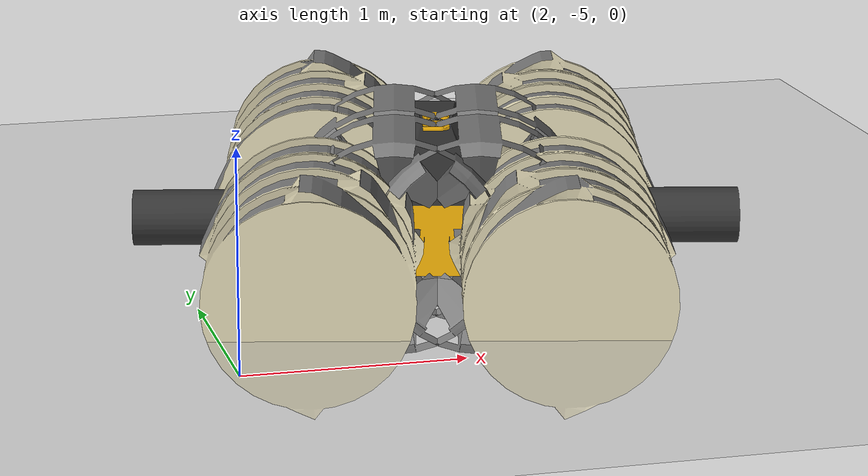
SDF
<sdf version="1.6">
 <world name="base_world">
  <physics name="default_physics" default="0" type="ode">
   <max_step_size>0.001</max_step_size>
   <real_time_factor>1</real_time_factor>
   <real_time_update_rate>1000</real_time_update_rate>
  </physics>
  <light name="sun" type="directional">
   <pose>0 0 10 0 -0 0</pose>
   <diffuse>0.8 0.8 0.8 1</diffuse>
   <specular>0.1 0.1 0.1 1</specular>
   <attenuation>
    <range>1000</range>
    <constant>0.9</constant>
    <linear>0.01</linear>
    <quadratic>0.001</quadratic>
   </attenuation>
   <direction>-0.5 0.5 -1</direction>
  </light>
  <model name="ground_plane">
   <static>1</static>
   <link name="link">
    <collision name="collision">
     <geometry><plane><normal>0 0 1</normal><size>100 100</size></plane></geometry>
     <surface><friction><ode><mu>100</mu><mu2>50</mu2></ode></friction></surface>
    </collision>
    <visual name="visual">
     <cast_shadows>0</cast_shadows>
     <geometry><plane><normal>0 0 1</normal><size>100 100</size></plane></geometry>
     <material>
      <script><uri>file://media/materials/scripts/gazebo.material</uri><name>Gazebo/Grey</name></script>
     </material>
    </visual>
   </link>
  </model>
  <gravity>0 0 -9.81</gravity>
  <magnetic_field>6e-06 2.3e-05 -4.2e-05</magnetic_field>
  <atmosphere type="adiabatic"/>
  <scene><ambient>0.4 0.4 0.4 1</ambient><background>0.7 0.7 0.7 1</background><shadows>1</shadows></scene>
  <spherical_coordinates>
   <surface_model>EARTH_WGS84</surface_model>
   <latitude_deg>0</latitude_deg>
   <longitude_deg>0</longitude_deg>
   <elevation>0</elevation>
   <heading_deg>0</heading_deg>
  </spherical_coordinates>
  <model name="ezrassor">
   <link name="base_link">
    <inertial>
     <pose>0.001974 0 -0.000658 0 -0 0</pose>
     <mass>15.2</mass>
     <inertia>
      <ixx>0.501047</ixx>
      <ixy>0</ixy>
      <ixz>0.00298026</ixz>
      <iyy>1.00999</iyy>
      <iyz>0</iyz>
      <izz>0.108994</izz>
     </inertia>
    </inertial>
    <collision name="base_link_fixed_joint_lump__collision_collision">
     <geometry>
      <mesh>
       <scale>1 1 1</scale>
       <uri>/home/ronald/.workspace/src/ezrassor_sim_description/meshes/base_unit.dae</uri>
      </mesh>
     </geometry>
    </collision>
    <collision name="base_link_fixed_joint_lump__stereo_camera_front_collision_1">
     <pose>0.3 0 -0.1 0 -0 0</pose>
     <geometry><box><size>0.04 0.04 0.04</size></box></geometry>
    </collision>
    <collision name="base_link_fixed_joint_lump__imu_link_collision_2">
     <geometry><box><size>0.04 0.04 0.04</size></box></geometry>
    </collision>
    <visual name="base_link_visual_visual">
     <geometry>
      <mesh>
       <scale>1 1 1</scale>
       <uri>/home/ronald/.workspace/src/ezrassor_sim_description/meshes/base_unit.dae</uri>
      </mesh>
     </geometry>
     <material><script><uri>__default__</uri><name>__default__</name></script></material>
    </visual>
    <visual name="base_link_fixed_joint_lump__stereo_camera_front_visual_1">
     <pose>0.3 0 -0.1 0 -0 0</pose>
     <geometry><box><size>0.04 0.04 0.04</size></box></geometry>
     <material><script><uri>__default__</uri><name>__default__</name></script></material>
    </visual>
    <visual name="base_link_fixed_joint_lump__imu_link_visual_2">
     <geometry><box><size>0.04 0.04 0.04</size></box></geometry>
     <material><script><uri>__default__</uri><name>__default__</name></script></material>
    </visual>
    <sensor name="stereo_camera" type="multicamera">
     <update_rate>60</update_rate>
     <camera name="left">
      <pose>0 0.035 0 0 -0 0</pose>
      <horizontal_fov>1.39626</horizontal_fov>
      <image><width>640</width><height>480</height><format>R8G8B8</format></image>
      <clip><near>0.02</near><far>300</far></clip>
      <noise><type>gaussian</type><mean>0</mean><stddev>0.007</stddev></noise>
     </camera>
     <camera name="right">
      <pose>0 -0.035 0 0 -0 0</pose>
      <horizontal_fov>1.39626</horizontal_fov>
      <image><width>640</width><height>480</height><format>R8G8B8</format></image>
      <clip><near>0.02</near><far>300</far></clip>
      <noise><type>gaussian</type><mean>0</mean><stddev>0.007</stddev></noise>
     </camera>
     <plugin name="stereo_camera_controller" filename="libgazebo_ros_multicamera.so">
      <focalLength>0</focalLength>
      <alwaysOn>true</alwaysOn>
      <updateRate>0.0</updateRate>
      <cameraName>front_camera</cameraName>
      <imageTopicName>image_raw</imageTopicName>
      <cameraInfoTopicName>camera_info</cameraInfoTopicName>
      <frameName>left_camera_optical_frame</frameName>
      <rightFrameName>right_camera_optical_frame</rightFrameName>
      <hackBaseline>0.07</hackBaseline>
      <distortionK1>0.0</distortionK1>
      <distortionK2>0.0</distortionK2>
      <distortionK3>0.0</distortionK3>
      <distortionT1>0.0</distortionT1>
      <distortionT2>0.0</distortionT2>
      <robotNamespace>/</robotNamespace>
     </plugin>
     <pose>0.3 0 -0.1 0 -0 0</pose>
    </sensor>
    <sensor name="imu_sensor" type="imu">
     <always_on>1</always_on>
     <update_rate>100</update_rate>
     <visualize>1</visualize>
     <topic>__default_topic__</topic>
     <plugin name="imu_plugin" filename="libgazebo_ros_imu_sensor.so">
      <topicName>imu</topicName>
      <bodyName>imu_link</bodyName>
      <updateRateHZ>10.0</updateRateHZ>
      <gaussianNoise>0.0</gaussianNoise>
      <xyzOffset>0 0 0</xyzOffset>
      <rpyOffset>0 0 0</rpyOffset>
      <frameName>imu_link</frameName>
      <robotNamespace>/</robotNamespace>
     </plugin>
    </sensor>
   </link>
   <link name="arm_back">
    <pose>-0.2 0 0 0 -0 0</pose>
    <inertial>
     <pose>0 0 0 0 -0 3.1415</pose>
     <mass>5</mass>
     <inertia>
      <ixx>0.040625</ixx>
      <ixy>0</ixy>
      <ixz>0</ixz>
      <iyy>0.040625</iyy>
      <iyz>0</iyz>
      <izz>0.00625</izz>
     </inertia>
    </inertial>
    <collision name="arm_back_fixed_joint_lump__collision_collision">
     <pose>0 0 0 3.1415 -0 3.1415</pose>
     <geometry>
      <mesh>
       <scale>1 1 1</scale>
       <uri>/home/ronald/.workspace/src/ezrassor_sim_description/meshes/drum_arm.dae</uri>
      </mesh>
     </geometry>
    </collision>
    <visual name="arm_back_fixed_joint_lump__visual_visual">
     <pose>0 0 0 3.1415 -0 3.1415</pose>
     <geometry>
      <mesh>
       <scale>1 1 1</scale>
       <uri>/home/ronald/.workspace/src/ezrassor_sim_description/meshes/drum_arm.dae</uri>
      </mesh>
     </geometry>
    </visual>
    <self_collide>1</self_collide>
   </link>
   <joint name="arm_back_hinge" type="revolute">
    <child>arm_back</child>
    <parent>base_link</parent>
    <axis>
     <xyz>0 1 0</xyz>
     <limit><lower>-1e+16</lower><upper>1e+16</upper></limit>
     <dynamics><spring_reference>0</spring_reference><spring_stiffness>0</spring_stiffness></dynamics>
     <use_parent_model_frame>1</use_parent_model_frame>
    </axis>
   </joint>
   <link name="drum_back">
    <pose>-0.588245 0 0 3.1415 -0 0</pose>
    <inertial>
     <pose>0 0 0 0 -0 3.14159</pose>
     <mass>5</mass>
     <inertia>
      <ixx>0.458941</ixx>
      <ixy>0</ixy>
      <ixz>0</ixz>
      <iyy>0.458941</iyy>
      <iyz>0</iyz>
      <izz>0.084548</izz>
     </inertia>
    </inertial>
    <collision name="drum_back_fixed_joint_lump__collision_collision">
     <pose>0 0 0 3.14159 1.57079 -1.57089</pose>
     <geometry><cylinder><length>1</length><radius>0.1839</radius></cylinder></geometry>
    </collision>
    <visual name="drum_back_visual">
     <pose>0 0 0 3.1415 -0 3.14159</pose>
     <geometry>
      <mesh>
       <scale>1 1 1</scale>
       <uri>/home/ronald/.workspace/src/ezrassor_sim_description/meshes/drum.dae</uri>
      </mesh>
     </geometry>
     <material><script><uri>__default__</uri><name>__default__</name></script></material>
    </visual>
    <self_collide>1</self_collide>
   </link>
   <joint name="drum_back_hinge" type="revolute">
    <child>drum_back</child>
    <parent>arm_back</parent>
    <axis>
     <xyz>0 -1 9.3e-05</xyz>
     <limit><lower>-1e+16</lower><upper>1e+16</upper></limit>
     <dynamics><spring_reference>0</spring_reference><spring_stiffness>0</spring_stiffness></dynamics>
     <use_parent_model_frame>1</use_parent_model_frame>
    </axis>
   </joint>
   <link name="arm_front">
    <pose>0.2 0 0 3.1415 -0 0</pose>
    <inertial>
     <mass>5</mass>
     <inertia>
      <ixx>0.040625</ixx>
      <ixy>0</ixy>
      <ixz>0</ixz>
      <iyy>0.040625</iyy>
      <iyz>0</iyz>
      <izz>0.00625</izz>
     </inertia>
    </inertial>
    <collision name="arm_front_fixed_joint_lump__collision_collision">
     <geometry>
      <mesh>
       <scale>1 1 1</scale>
       <uri>/home/ronald/.workspace/src/ezrassor_sim_description/meshes/drum_arm.dae</uri>
      </mesh>
     </geometry>
    </collision>
    <visual name="arm_front_fixed_joint_lump__visual_visual">
     <geometry>
      <mesh>
       <scale>1 1 1</scale>
       <uri>/home/ronald/.workspace/src/ezrassor_sim_description/meshes/drum_arm.dae</uri>
      </mesh>
     </geometry>
    </visual>
    <self_collide>1</self_collide>
   </link>
   <joint name="arm_front_hinge" type="revolute">
    <child>arm_front</child>
    <parent>base_link</parent>
    <axis>
     <xyz>0 -1 9.3e-05</xyz>
     <limit><lower>-1e+16</lower><upper>1e+16</upper></limit>
     <dynamics><spring_reference>0</spring_reference><spring_stiffness>0</spring_stiffness></dynamics>
     <use_parent_model_frame>1</use_parent_model_frame>
    </axis>
   </joint>
   <link name="drum_front">
    <pose>0.588245 0 0 -0.000185 -0 0</pose>
    <inertial>
     <mass>5</mass>
     <inertia>
      <ixx>0.458941</ixx>
      <ixy>0</ixy>
      <ixz>0</ixz>
      <iyy>0.458941</iyy>
      <iyz>0</iyz>
      <izz>0.084548</izz>
     </inertia>
    </inertial>
    <collision name="drum_front_fixed_joint_lump__collision_collision">
     <pose>0 0 0 3.14159 1.57079 -1.57089</pose>
     <geometry><cylinder><length>1</length><radius>0.1839</radius></cylinder></geometry>
    </collision>
    <visual name="drum_front_visual_visual">
     <geometry>
      <mesh>
       <scale>1 1 1</scale>
       <uri>/home/ronald/.workspace/src/ezrassor_sim_description/meshes/drum.dae</uri>
      </mesh>
     </geometry>
     <material><script><uri>__default__</uri><name>__default__</name></script></material>
    </visual>
    <self_collide>1</self_collide>
   </link>
   <joint name="drum_front_hinge" type="revolute">
    <child>drum_front</child>
    <parent>arm_front</parent>
    <axis>
     <xyz>0 1 -0.000185</xyz>
     <limit><lower>-1e+16</lower><upper>1e+16</upper></limit>
     <dynamics><spring_reference>0</spring_reference><spring_stiffness>0</spring_stiffness></dynamics>
     <use_parent_model_frame>1</use_parent_model_frame>
    </axis>
    <physics><ode><limit><cfm>0</cfm><erp>0.2</erp></limit></ode></physics>
    <sensor name="force_torque" type="force_torque"><update_rate>1</update_rate></sensor>
   </joint>
   <link name="left_wheel_back">
    <pose>-0.2 0.285 0 0 -0 0</pose>
    <inertial>
     <mass>5</mass>
     <inertia>
      <ixx>0.0571667</ixx>
      <ixy>0</ixy>
      <ixz>0</ixz>
      <iyy>0.0571667</iyy>
      <iyz>0</iyz>
      <izz>0.081</izz>
     </inertia>
    </inertial>
    <collision name="left_wheel_back_fixed_joint_lump__collision_collision">
     <geometry>
      <mesh>
       <scale>1 1 1</scale>
       <uri>/home/ronald/.workspace/src/ezrassor_sim_description/meshes/wheel.dae</uri>
      </mesh>
     </geometry>
    </collision>
    <visual name="left_wheel_back_visual_visual">
     <geometry>
      <mesh>
       <scale>1 1 1</scale>
       <uri>/home/ronald/.workspace/src/ezrassor_sim_description/meshes/wheel.dae</uri>
      </mesh>
     </geometry>
     <material><script><uri>__default__</uri><name>__default__</name></script></material>
    </visual>
    <self_collide>1</self_collide>
   </link>
   <joint name="left_wheel_back_hinge" type="revolute">
    <child>left_wheel_back</child>
    <parent>base_link</parent>
    <axis>
     <xyz>0 1 0</xyz>
     <limit><lower>-1e+16</lower><upper>1e+16</upper></limit>
     <dynamics><spring_reference>0</spring_reference><spring_stiffness>0</spring_stiffness></dynamics>
     <use_parent_model_frame>1</use_parent_model_frame>
    </axis>
   </joint>
   <link name="left_wheel_front">
    <pose>0.2 0.285 0 0 -0 0</pose>
    <inertial>
     <mass>5</mass>
     <inertia>
      <ixx>0.0571667</ixx>
      <ixy>0</ixy>
      <ixz>0</ixz>
      <iyy>0.0571667</iyy>
      <iyz>0</iyz>
      <izz>0.081</izz>
     </inertia>
    </inertial>
    <collision name="left_wheel_front_fixed_joint_lump__collision_collision">
     <geometry>
      <mesh>
       <scale>1 1 1</scale>
       <uri>/home/ronald/.workspace/src/ezrassor_sim_description/meshes/wheel.dae</uri>
      </mesh>
     </geometry>
    </collision>
    <visual name="left_wheel_front_visual_visual">
     <geometry>
      <mesh>
       <scale>1 1 1</scale>
       <uri>/home/ronald/.workspace/src/ezrassor_sim_description/meshes/wheel.dae</uri>
      </mesh>
     </geometry>
     <material><script><uri>__default__</uri><name>__default__</name></script></material>
    </visual>
    <self_collide>1</self_collide>
   </link>
   <joint name="left_wheel_front_hinge" type="revolute">
    <child>left_wheel_front</child>
    <parent>base_link</parent>
    <axis>
     <xyz>0 1 0</xyz>
     <limit><lower>-1e+16</lower><upper>1e+16</upper></limit>
     <dynamics><spring_reference>0</spring_reference><spring_stiffness>0</spring_stiffness></dynamics>
     <use_parent_model_frame>1</use_parent_model_frame>
    </axis>
   </joint>
   <link name="right_wheel_back">
    <pose>-0.2 -0.285 0 0 -0 0</pose>
    <inertial>
     <pose>0 0 0 0 -0 3.14159</pose>
     <mass>5</mass>
     <inertia>
      <ixx>0.0571667</ixx>
      <ixy>0</ixy>
      <ixz>0</ixz>
      <iyy>0.0571667</iyy>
      <iyz>0</iyz>
      <izz>0.081</izz>
     </inertia>
    </inertial>
    <collision name="right_wheel_back_fixed_joint_lump__collision_collision">
     <pose>0 0 0 0 -0 3.14159</pose>
     <geometry>
      <mesh>
       <scale>1 1 1</scale>
       <uri>/home/ronald/.workspace/src/ezrassor_sim_description/meshes/wheel.dae</uri>
      </mesh>
     </geometry>
    </collision>
    <visual name="right_wheel_back_visual_visual">
     <pose>0 0 0 0 -0 3.14159</pose>
     <geometry>
      <mesh>
       <scale>1 1 1</scale>
       <uri>/home/ronald/.workspace/src/ezrassor_sim_description/meshes/wheel.dae</uri>
      </mesh>
     </geometry>
     <material><script><uri>__default__</uri><name>__default__</name></script></material>
    </visual>
    <self_collide>1</self_collide>
   </link>
   <joint name="right_wheel_back_hinge" type="revolute">
    <child>right_wheel_back</child>
    <parent>base_link</parent>
    <axis>
     <xyz>0 1 0</xyz>
     <limit><lower>-1e+16</lower><upper>1e+16</upper></limit>
     <dynamics><spring_reference>0</spring_reference><spring_stiffness>0</spring_stiffness></dynamics>
     <use_parent_model_frame>1</use_parent_model_frame>
    </axis>
   </joint>
   <link name="right_wheel_front">
    <pose>0.2 -0.285 0 0 -0 0</pose>
    <inertial>
     <pose>0 0 0 0 -0 3.14159</pose>
     <mass>5</mass>
     <inertia>
      <ixx>0.0571667</ixx>
      <ixy>0</ixy>
      <ixz>0</ixz>
      <iyy>0.0571667</iyy>
      <iyz>0</iyz>
      <izz>0.081</izz>
     </inertia>
    </inertial>
    <collision name="right_wheel_front_fixed_joint_lump__collision_collision">
     <pose>0 0 0 0 -0 3.14159</pose>
     <geometry>
      <mesh>
       <scale>1 1 1</scale>
       <uri>/home/ronald/.workspace/src/ezrassor_sim_description/meshes/wheel.dae</uri>
      </mesh>
     </geometry>
    </collision>
    <visual name="right_wheel_front_visual_visual">
     <pose>0 0 0 0 -0 3.14159</pose>
     <geometry>
      <mesh>
       <scale>1 1 1</scale>
       <uri>/home/ronald/.workspace/src/ezrassor_sim_description/meshes/wheel.dae</uri>
      </mesh>
     </geometry>
     <material><script><uri>__default__</uri><name>__default__</name></script></material>
    </visual>
    <self_collide>1</self_collide>
   </link>
   <joint name="right_wheel_front_hinge" type="revolute">
    <child>right_wheel_front</child>
    <parent>base_link</parent>
    <axis>
     <xyz>0 1 0</xyz>
     <limit><lower>-1e+16</lower><upper>1e+16</upper></limit>
     <dynamics><spring_reference>0</spring_reference><spring_stiffness>0</spring_stiffness></dynamics>
     <use_parent_model_frame>1</use_parent_model_frame>
    </axis>
   </joint>
   <static>0</static>
   <plugin name="gazebo_ros_control" filename="libgazebo_ros_control.so">
    <robotNamespace>/</robotNamespace>
   </plugin>
   <pose>3.28762 -3.33177 0.178674 4e-06 -0.000739 -0.238688</pose>
  </model>
 </world>
</sdf>
